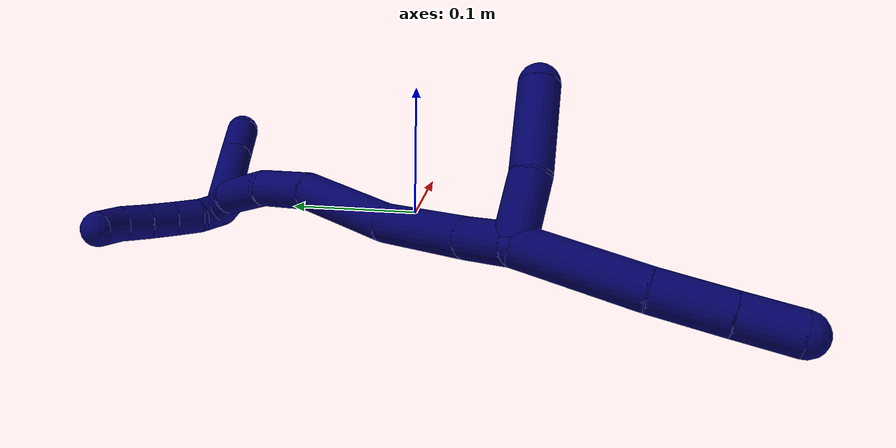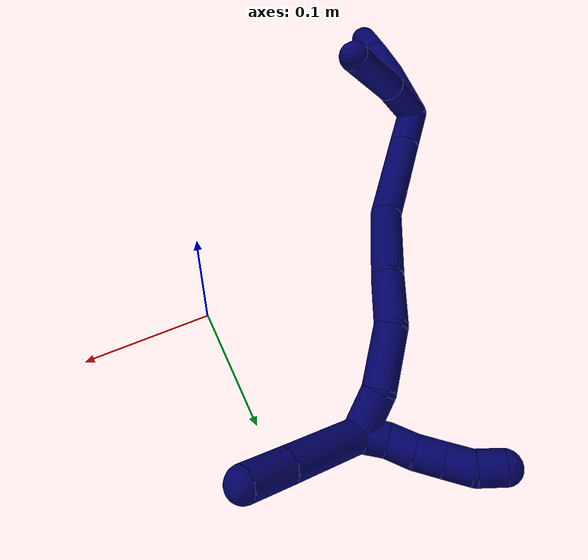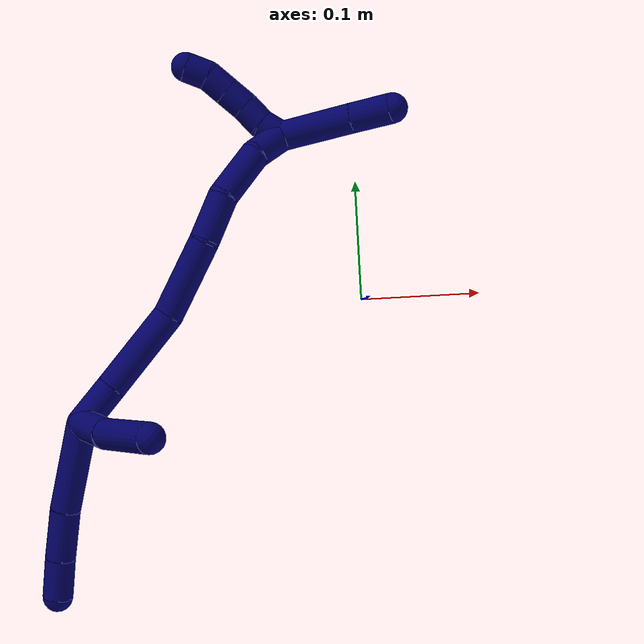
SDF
<sdf version="1.7">
 <world name="default">
  <model name="7">
   <static>0</static>
   <link name="7">
    <collision name="collision-cylinder-e_1_2_8">
     <pose>-0.027391 -0.014483 -0.020569 2.52811 -0.827906 -1.8923</pose>
     <geometry><cylinder><radius>0.0125</radius><length>0.074379</length></cylinder></geometry>
     <surface>
      <friction><ode><mu>1.16</mu><mu2>1.16</mu2><slip1>0</slip1><slip2>0</slip2></ode></friction>
      <contact><ode><kp>1e+06</kp><kd>1</kd><max_vel>0</max_vel><min_depth>0.001</min_depth></ode></contact>
     </surface>
    </collision>
    <visual name="visual-cylinder-e_1_2_8">
     <pose>-0.027391 -0.014483 -0.020569 2.52811 -0.827906 -1.8923</pose>
     <geometry><cylinder><radius>0.0125</radius><length>0.074379</length></cylinder></geometry>
     <material><ambient>0.003922 0 0.403922 1</ambient></material>
    </visual>
    <collision name="collision-cylinder-e_2_8_9">
     <pose>-0.06906 -0.037148 -0.054195 2.5818 -0.74731 -1.87635</pose>
     <geometry><cylinder><radius>0.0125</radius><length>0.042017</length></cylinder></geometry>
     <surface>
      <friction><ode><mu>1.16</mu><mu2>1.16</mu2><slip1>0</slip1><slip2>0</slip2></ode></friction>
      <contact><ode><kp>1e+06</kp><kd>1</kd><max_vel>0</max_vel><min_depth>0.001</min_depth></ode></contact>
     </surface>
    </collision>
    <visual name="visual-cylinder-e_2_8_9">
     <pose>-0.06906 -0.037148 -0.054195 2.5818 -0.74731 -1.87635</pose>
     <geometry><cylinder><radius>0.0125</radius><length>0.042017</length></cylinder></geometry>
     <material><ambient>0.003922 0 0.403922 1</ambient></material>
    </visual>
    <collision name="collision-cylinder-e_3_9_6">
     <pose>-0.094419 -0.051761 -0.078125 2.60754 -0.720108 -1.8848</pose>
     <geometry><cylinder><radius>0.0125</radius><length>0.033604</length></cylinder></geometry>
     <surface>
      <friction><ode><mu>1.16</mu><mu2>1.16</mu2><slip1>0</slip1><slip2>0</slip2></ode></friction>
      <contact><ode><kp>1e+06</kp><kd>1</kd><max_vel>0</max_vel><min_depth>0.001</min_depth></ode></contact>
     </surface>
    </collision>
    <visual name="visual-cylinder-e_3_9_6">
     <pose>-0.094419 -0.051761 -0.078125 2.60754 -0.720108 -1.8848</pose>
     <geometry><cylinder><radius>0.0125</radius><length>0.033604</length></cylinder></geometry>
     <material><ambient>0.003922 0 0.403922 1</ambient></material>
    </visual>
    <collision name="collision-cylinder-e_1_2_10">
     <pose>0.014911 -0.013026 -0.005643 1.97959 0.809943 1.15676</pose>
     <geometry><cylinder><radius>0.0125</radius><length>0.041175</length></cylinder></geometry>
     <surface>
      <friction><ode><mu>1.16</mu><mu2>1.16</mu2><slip1>0</slip1><slip2>0</slip2></ode></friction>
      <contact><ode><kp>1e+06</kp><kd>1</kd><max_vel>0</max_vel><min_depth>0.001</min_depth></ode></contact>
     </surface>
    </collision>
    <visual name="visual-cylinder-e_1_2_10">
     <pose>0.014911 -0.013026 -0.005643 1.97959 0.809943 1.15676</pose>
     <geometry><cylinder><radius>0.0125</radius><length>0.041175</length></cylinder></geometry>
     <material><ambient>0.003922 0 0.403922 1</ambient></material>
    </visual>
    <collision name="collision-cylinder-e_2_10_5">
     <pose>0.054275 -0.040682 -0.018569 2.03274 0.981675 1.42414</pose>
     <geometry><cylinder><radius>0.0125</radius><length>0.058825</length></cylinder></geometry>
     <surface>
      <friction><ode><mu>1.16</mu><mu2>1.16</mu2><slip1>0</slip1><slip2>0</slip2></ode></friction>
      <contact><ode><kp>1e+06</kp><kd>1</kd><max_vel>0</max_vel><min_depth>0.001</min_depth></ode></contact>
     </surface>
    </collision>
    <visual name="visual-cylinder-e_2_10_5">
     <pose>0.054275 -0.040682 -0.018569 2.03274 0.981675 1.42414</pose>
     <geometry><cylinder><radius>0.0125</radius><length>0.058825</length></cylinder></geometry>
     <material><ambient>0.003922 0 0.403922 1</ambient></material>
    </visual>
    <collision name="collision-cylinder-e_1_2_11">
     <pose>0.014007 0.012019 0.0012 -1.47128 0.859151 -0.786137</pose>
     <geometry><cylinder><radius>0.0125</radius><length>0.036992</length></cylinder></geometry>
     <surface>
      <friction><ode><mu>1.16</mu><mu2>1.16</mu2><slip1>0</slip1><slip2>0</slip2></ode></friction>
      <contact><ode><kp>1e+06</kp><kd>1</kd><max_vel>0</max_vel><min_depth>0.001</min_depth></ode></contact>
     </surface>
    </collision>
    <visual name="visual-cylinder-e_1_2_11">
     <pose>0.014007 0.012019 0.0012 -1.47128 0.859151 -0.786137</pose>
     <geometry><cylinder><radius>0.0125</radius><length>0.036992</length></cylinder></geometry>
     <material><ambient>0.003922 0 0.403922 1</ambient></material>
    </visual>
    <collision name="collision-cylinder-e_2_11_12">
     <pose>0.057113 0.047423 0.005397 -1.44333 0.889877 -0.794605</pose>
     <geometry><cylinder><radius>0.0125</radius><length>0.074902</length></cylinder></geometry>
     <surface>
      <friction><ode><mu>1.16</mu><mu2>1.16</mu2><slip1>0</slip1><slip2>0</slip2></ode></friction>
      <contact><ode><kp>1e+06</kp><kd>1</kd><max_vel>0</max_vel><min_depth>0.001</min_depth></ode></contact>
     </surface>
    </collision>
    <visual name="visual-cylinder-e_2_11_12">
     <pose>0.057113 0.047423 0.005397 -1.44333 0.889877 -0.794605</pose>
     <geometry><cylinder><radius>0.0125</radius><length>0.074902</length></cylinder></geometry>
     <material><ambient>0.003922 0 0.403922 1</ambient></material>
    </visual>
    <collision name="collision-cylinder-e_3_12_13">
     <pose>0.114561 0.085742 0.019645 -0.925149 0.987729 -0.524551</pose>
     <geometry><cylinder><radius>0.0125</radius><length>0.067919</length></cylinder></geometry>
     <surface>
      <friction><ode><mu>1.16</mu><mu2>1.16</mu2><slip1>0</slip1><slip2>0</slip2></ode></friction>
      <contact><ode><kp>1e+06</kp><kd>1</kd><max_vel>0</max_vel><min_depth>0.001</min_depth></ode></contact>
     </surface>
    </collision>
    <visual name="visual-cylinder-e_3_12_13">
     <pose>0.114561 0.085742 0.019645 -0.925149 0.987729 -0.524551</pose>
     <geometry><cylinder><radius>0.0125</radius><length>0.067919</length></cylinder></geometry>
     <material><ambient>0.003922 0 0.403922 1</ambient></material>
    </visual>
    <collision name="collision-cylinder-e_4_13_14">
     <pose>0.156777 0.113484 0.037659 -1.08495 0.763649 -0.47495</pose>
     <geometry><cylinder><radius>0.0125</radius><length>0.040106</length></cylinder></geometry>
     <surface>
      <friction><ode><mu>1.16</mu><mu2>1.16</mu2><slip1>0</slip1><slip2>0</slip2></ode></friction>
      <contact><ode><kp>1e+06</kp><kd>1</kd><max_vel>0</max_vel><min_depth>0.001</min_depth></ode></contact>
     </surface>
    </collision>
    <visual name="visual-cylinder-e_4_13_14">
     <pose>0.156777 0.113484 0.037659 -1.08495 0.763649 -0.47495</pose>
     <geometry><cylinder><radius>0.0125</radius><length>0.040106</length></cylinder></geometry>
     <material><ambient>0.003922 0 0.403922 1</ambient></material>
    </visual>
    <collision name="collision-cylinder-e_5_14_15">
     <pose>0.185198 0.14471 0.045731 -1.49988 0.667492 -0.624773</pose>
     <geometry><cylinder><radius>0.0125</radius><length>0.047019</length></cylinder></geometry>
     <surface>
      <friction><ode><mu>1.16</mu><mu2>1.16</mu2><slip1>0</slip1><slip2>0</slip2></ode></friction>
      <contact><ode><kp>1e+06</kp><kd>1</kd><max_vel>0</max_vel><min_depth>0.001</min_depth></ode></contact>
     </surface>
    </collision>
    <visual name="visual-cylinder-e_5_14_15">
     <pose>0.185198 0.14471 0.045731 -1.49988 0.667492 -0.624773</pose>
     <geometry><cylinder><radius>0.0125</radius><length>0.047019</length></cylinder></geometry>
     <material><ambient>0.003922 0 0.403922 1</ambient></material>
    </visual>
    <collision name="collision-cylinder-e_6_15_1">
     <pose>0.207978 0.176918 0.043112 -1.84823 0.520939 -0.678729</pose>
     <geometry><cylinder><radius>0.0125</radius><length>0.033062</length></cylinder></geometry>
     <surface>
      <friction><ode><mu>1.16</mu><mu2>1.16</mu2><slip1>0</slip1><slip2>0</slip2></ode></friction>
      <contact><ode><kp>1e+06</kp><kd>1</kd><max_vel>0</max_vel><min_depth>0.001</min_depth></ode></contact>
     </surface>
    </collision>
    <visual name="visual-cylinder-e_6_15_1">
     <pose>0.207978 0.176918 0.043112 -1.84823 0.520939 -0.678729</pose>
     <geometry><cylinder><radius>0.0125</radius><length>0.033062</length></cylinder></geometry>
     <material><ambient>0.003922 0 0.403922 1</ambient></material>
    </visual>
    <collision name="collision-cylinder-e_1_1_16">
     <pose>0.212691 0.192179 0.048431 -0.157832 -0.35911 0.028706</pose>
     <geometry><cylinder><radius>0.0125</radius><length>0.02</length></cylinder></geometry>
     <surface>
      <friction><ode><mu>1.16</mu><mu2>1.16</mu2><slip1>0</slip1><slip2>0</slip2></ode></friction>
      <contact><ode><kp>1e+06</kp><kd>1</kd><max_vel>0</max_vel><min_depth>0.001</min_depth></ode></contact>
     </surface>
    </collision>
    <visual name="visual-cylinder-e_1_1_16">
     <pose>0.212691 0.192179 0.048431 -0.157832 -0.35911 0.028706</pose>
     <geometry><cylinder><radius>0.0125</radius><length>0.02</length></cylinder></geometry>
     <material><ambient>0.003922 0 0.403922 1</ambient></material>
    </visual>
    <collision name="collision-cylinder-e_2_16_17">
     <pose>0.208252 0.195843 0.067389 -0.221962 -0.092604 0.010327</pose>
     <geometry><cylinder><radius>0.0125</radius><length>0.02</length></cylinder></geometry>
     <surface>
      <friction><ode><mu>1.16</mu><mu2>1.16</mu2><slip1>0</slip1><slip2>0</slip2></ode></friction>
      <contact><ode><kp>1e+06</kp><kd>1</kd><max_vel>0</max_vel><min_depth>0.001</min_depth></ode></contact>
     </surface>
    </collision>
    <visual name="visual-cylinder-e_2_16_17">
     <pose>0.208252 0.195843 0.067389 -0.221962 -0.092604 0.010327</pose>
     <geometry><cylinder><radius>0.0125</radius><length>0.02</length></cylinder></geometry>
     <material><ambient>0.003922 0 0.403922 1</ambient></material>
    </visual>
    <collision name="collision-cylinder-e_3_17_18">
     <pose>0.205599 0.199168 0.086887 -0.115315 -0.173644 0.010048</pose>
     <geometry><cylinder><radius>0.0125</radius><length>0.02</length></cylinder></geometry>
     <surface>
      <friction><ode><mu>1.16</mu><mu2>1.16</mu2><slip1>0</slip1><slip2>0</slip2></ode></friction>
      <contact><ode><kp>1e+06</kp><kd>1</kd><max_vel>0</max_vel><min_depth>0.001</min_depth></ode></contact>
     </surface>
    </collision>
    <visual name="visual-cylinder-e_3_17_18">
     <pose>0.205599 0.199168 0.086887 -0.115315 -0.173644 0.010048</pose>
     <geometry><cylinder><radius>0.0125</radius><length>0.02</length></cylinder></geometry>
     <material><ambient>0.003922 0 0.403922 1</ambient></material>
    </visual>
    <collision name="collision-cylinder-e_4_18_19">
     <pose>0.202293 0.201225 0.106502 -0.093658 -0.1585 0.007443</pose>
     <geometry><cylinder><radius>0.0125</radius><length>0.02</length></cylinder></geometry>
     <surface>
      <friction><ode><mu>1.16</mu><mu2>1.16</mu2><slip1>0</slip1><slip2>0</slip2></ode></friction>
      <contact><ode><kp>1e+06</kp><kd>1</kd><max_vel>0</max_vel><min_depth>0.001</min_depth></ode></contact>
     </surface>
    </collision>
    <visual name="visual-cylinder-e_4_18_19">
     <pose>0.202293 0.201225 0.106502 -0.093658 -0.1585 0.007443</pose>
     <geometry><cylinder><radius>0.0125</radius><length>0.02</length></cylinder></geometry>
     <material><ambient>0.003922 0 0.403922 1</ambient></material>
    </visual>
    <collision name="collision-cylinder-e_5_19_4">
     <pose>0.196325 0.201581 0.125301 0.063224 -0.454452 -0.014623</pose>
     <geometry><cylinder><radius>0.0125</radius><length>0.02</length></cylinder></geometry>
     <surface>
      <friction><ode><mu>1.16</mu><mu2>1.16</mu2><slip1>0</slip1><slip2>0</slip2></ode></friction>
      <contact><ode><kp>1e+06</kp><kd>1</kd><max_vel>0</max_vel><min_depth>0.001</min_depth></ode></contact>
     </surface>
    </collision>
    <visual name="visual-cylinder-e_5_19_4">
     <pose>0.196325 0.201581 0.125301 0.063224 -0.454452 -0.014623</pose>
     <geometry><cylinder><radius>0.0125</radius><length>0.02</length></cylinder></geometry>
     <material><ambient>0.003922 0 0.403922 1</ambient></material>
    </visual>
    <collision name="collision-cylinder-e_1_1_20">
     <pose>0.246487 0.187712 0.026428 2.91093 1.1624 2.79247</pose>
     <geometry><cylinder><radius>0.0125</radius><length>0.06599</length></cylinder></geometry>
     <surface>
      <friction><ode><mu>1.16</mu><mu2>1.16</mu2><slip1>0</slip1><slip2>0</slip2></ode></friction>
      <contact><ode><kp>1e+06</kp><kd>1</kd><max_vel>0</max_vel><min_depth>0.001</min_depth></ode></contact>
     </surface>
    </collision>
    <visual name="visual-cylinder-e_1_1_20">
     <pose>0.246487 0.187712 0.026428 2.91093 1.1624 2.79247</pose>
     <geometry><cylinder><radius>0.0125</radius><length>0.06599</length></cylinder></geometry>
     <material><ambient>0.003922 0 0.403922 1</ambient></material>
    </visual>
    <collision name="collision-cylinder-e_2_20_3">
     <pose>0.292306 0.183156 0.006941 2.91377 1.15237 2.79299</pose>
     <geometry><cylinder><radius>0.0125</radius><length>0.03401</length></cylinder></geometry>
     <surface>
      <friction><ode><mu>1.16</mu><mu2>1.16</mu2><slip1>0</slip1><slip2>0</slip2></ode></friction>
      <contact><ode><kp>1e+06</kp><kd>1</kd><max_vel>0</max_vel><min_depth>0.001</min_depth></ode></contact>
     </surface>
    </collision>
    <visual name="visual-cylinder-e_2_20_3">
     <pose>0.292306 0.183156 0.006941 2.91377 1.15237 2.79299</pose>
     <geometry><cylinder><radius>0.0125</radius><length>0.03401</length></cylinder></geometry>
     <material><ambient>0.003922 0 0.403922 1</ambient></material>
    </visual>
    <collision name="collision-sphere-3">
     <pose>0.307844 0.181595 0.00021 0 -0 0</pose>
     <geometry><sphere><radius>0.0125</radius></sphere></geometry>
     <surface>
      <friction><ode><mu>1.16</mu><mu2>1.16</mu2><slip1>0</slip1><slip2>0</slip2></ode></friction>
      <contact><ode><kp>1e+06</kp><kd>1</kd><max_vel>0</max_vel><min_depth>0.001</min_depth></ode></contact>
     </surface>
    </collision>
    <visual name="visual-sphere-3">
     <pose>0.307844 0.181595 0.00021 0 -0 0</pose>
     <geometry><sphere><radius>0.0125</radius></sphere></geometry>
     <material><ambient>0.003922 0 0.403922 1</ambient></material>
    </visual>
    <collision name="collision-sphere-20">
     <pose>0.276769 0.184716 0.013672 0 -0 0</pose>
     <geometry><sphere><radius>0.0125</radius></sphere></geometry>
     <surface>
      <friction><ode><mu>1.16</mu><mu2>1.16</mu2><slip1>0</slip1><slip2>0</slip2></ode></friction>
      <contact><ode><kp>1e+06</kp><kd>1</kd><max_vel>0</max_vel><min_depth>0.001</min_depth></ode></contact>
     </surface>
    </collision>
    <visual name="visual-sphere-20">
     <pose>0.276769 0.184716 0.013672 0 -0 0</pose>
     <geometry><sphere><radius>0.0125</radius></sphere></geometry>
     <material><ambient>0.003922 0 0.403922 1</ambient></material>
    </visual>
    <collision name="collision-sphere-4">
     <pose>0.191936 0.201013 0.134268 0 -0 0</pose>
     <geometry><sphere><radius>0.0125</radius></sphere></geometry>
     <surface>
      <friction><ode><mu>1.16</mu><mu2>1.16</mu2><slip1>0</slip1><slip2>0</slip2></ode></friction>
      <contact><ode><kp>1e+06</kp><kd>1</kd><max_vel>0</max_vel><min_depth>0.001</min_depth></ode></contact>
     </surface>
    </collision>
    <visual name="visual-sphere-4">
     <pose>0.191936 0.201013 0.134268 0 -0 0</pose>
     <geometry><sphere><radius>0.0125</radius></sphere></geometry>
     <material><ambient>0.003922 0 0.403922 1</ambient></material>
    </visual>
    <collision name="collision-sphere-5">
     <pose>0.07873 -0.055312 -0.025853 0 -0 0</pose>
     <geometry><sphere><radius>0.0125</radius></sphere></geometry>
     <surface>
      <friction><ode><mu>1.16</mu><mu2>1.16</mu2><slip1>0</slip1><slip2>0</slip2></ode></friction>
      <contact><ode><kp>1e+06</kp><kd>1</kd><max_vel>0</max_vel><min_depth>0.001</min_depth></ode></contact>
     </surface>
    </collision>
    <visual name="visual-sphere-5">
     <pose>0.07873 -0.055312 -0.025853 0 -0 0</pose>
     <geometry><sphere><radius>0.0125</radius></sphere></geometry>
     <material><ambient>0.003922 0 0.403922 1</ambient></material>
    </visual>
    <collision name="collision-sphere-10">
     <pose>0.029821 -0.026053 -0.011286 0 -0 0</pose>
     <geometry><sphere><radius>0.0125</radius></sphere></geometry>
     <surface>
      <friction><ode><mu>1.16</mu><mu2>1.16</mu2><slip1>0</slip1><slip2>0</slip2></ode></friction>
      <contact><ode><kp>1e+06</kp><kd>1</kd><max_vel>0</max_vel><min_depth>0.001</min_depth></ode></contact>
     </surface>
    </collision>
    <visual name="visual-sphere-10">
     <pose>0.029821 -0.026053 -0.011286 0 -0 0</pose>
     <geometry><sphere><radius>0.0125</radius></sphere></geometry>
     <material><ambient>0.003922 0 0.403922 1</ambient></material>
    </visual>
    <collision name="collision-sphere-6">
     <pose>-0.1055 -0.05819 -0.088997 0 -0 0</pose>
     <geometry><sphere><radius>0.0125</radius></sphere></geometry>
     <surface>
      <friction><ode><mu>1.16</mu><mu2>1.16</mu2><slip1>0</slip1><slip2>0</slip2></ode></friction>
      <contact><ode><kp>1e+06</kp><kd>1</kd><max_vel>0</max_vel><min_depth>0.001</min_depth></ode></contact>
     </surface>
    </collision>
    <visual name="visual-sphere-6">
     <pose>-0.1055 -0.05819 -0.088997 0 -0 0</pose>
     <geometry><sphere><radius>0.0125</radius></sphere></geometry>
     <material><ambient>0.003922 0 0.403922 1</ambient></material>
    </visual>
    <collision name="collision-sphere-9">
     <pose>-0.083339 -0.045331 -0.067253 0 -0 0</pose>
     <geometry><sphere><radius>0.0125</radius></sphere></geometry>
     <surface>
      <friction><ode><mu>1.16</mu><mu2>1.16</mu2><slip1>0</slip1><slip2>0</slip2></ode></friction>
      <contact><ode><kp>1e+06</kp><kd>1</kd><max_vel>0</max_vel><min_depth>0.001</min_depth></ode></contact>
     </surface>
    </collision>
    <visual name="visual-sphere-9">
     <pose>-0.083339 -0.045331 -0.067253 0 -0 0</pose>
     <geometry><sphere><radius>0.0125</radius></sphere></geometry>
     <material><ambient>0.003922 0 0.403922 1</ambient></material>
    </visual>
    <collision name="collision-sphere-2">
     <geometry><sphere><radius>0.0125</radius></sphere></geometry>
     <surface>
      <friction><ode><mu>1.16</mu><mu2>1.16</mu2><slip1>0</slip1><slip2>0</slip2></ode></friction>
      <contact><ode><kp>1e+06</kp><kd>1</kd><max_vel>0</max_vel><min_depth>0.001</min_depth></ode></contact>
     </surface>
    </collision>
    <visual name="visual-sphere-2">
     <geometry><sphere><radius>0.0125</radius></sphere></geometry>
     <material><ambient>0.003922 0 0.403922 1</ambient></material>
    </visual>
    <collision name="collision-sphere-19">
     <pose>0.200715 0.202148 0.116333 0 -0 0</pose>
     <geometry><sphere><radius>0.0125</radius></sphere></geometry>
     <surface>
      <friction><ode><mu>1.16</mu><mu2>1.16</mu2><slip1>0</slip1><slip2>0</slip2></ode></friction>
      <contact><ode><kp>1e+06</kp><kd>1</kd><max_vel>0</max_vel><min_depth>0.001</min_depth></ode></contact>
     </surface>
    </collision>
    <visual name="visual-sphere-19">
     <pose>0.200715 0.202148 0.116333 0 -0 0</pose>
     <geometry><sphere><radius>0.0125</radius></sphere></geometry>
     <material><ambient>0.003922 0 0.403922 1</ambient></material>
    </visual>
    <collision name="collision-sphere-8">
     <pose>-0.054781 -0.028965 -0.041137 0 -0 0</pose>
     <geometry><sphere><radius>0.0125</radius></sphere></geometry>
     <surface>
      <friction><ode><mu>1.16</mu><mu2>1.16</mu2><slip1>0</slip1><slip2>0</slip2></ode></friction>
      <contact><ode><kp>1e+06</kp><kd>1</kd><max_vel>0</max_vel><min_depth>0.001</min_depth></ode></contact>
     </surface>
    </collision>
    <visual name="visual-sphere-8">
     <pose>-0.054781 -0.028965 -0.041137 0 -0 0</pose>
     <geometry><sphere><radius>0.0125</radius></sphere></geometry>
     <material><ambient>0.003922 0 0.403922 1</ambient></material>
    </visual>
    <collision name="collision-sphere-11">
     <pose>0.028013 0.024039 0.0024 0 -0 0</pose>
     <geometry><sphere><radius>0.0125</radius></sphere></geometry>
     <surface>
      <friction><ode><mu>1.16</mu><mu2>1.16</mu2><slip1>0</slip1><slip2>0</slip2></ode></friction>
      <contact><ode><kp>1e+06</kp><kd>1</kd><max_vel>0</max_vel><min_depth>0.001</min_depth></ode></contact>
     </surface>
    </collision>
    <visual name="visual-sphere-11">
     <pose>0.028013 0.024039 0.0024 0 -0 0</pose>
     <geometry><sphere><radius>0.0125</radius></sphere></geometry>
     <material><ambient>0.003922 0 0.403922 1</ambient></material>
    </visual>
    <collision name="collision-sphere-12">
     <pose>0.086212 0.070808 0.008394 0 -0 0</pose>
     <geometry><sphere><radius>0.0125</radius></sphere></geometry>
     <surface>
      <friction><ode><mu>1.16</mu><mu2>1.16</mu2><slip1>0</slip1><slip2>0</slip2></ode></friction>
      <contact><ode><kp>1e+06</kp><kd>1</kd><max_vel>0</max_vel><min_depth>0.001</min_depth></ode></contact>
     </surface>
    </collision>
    <visual name="visual-sphere-12">
     <pose>0.086212 0.070808 0.008394 0 -0 0</pose>
     <geometry><sphere><radius>0.0125</radius></sphere></geometry>
     <material><ambient>0.003922 0 0.403922 1</ambient></material>
    </visual>
    <collision name="collision-sphere-13">
     <pose>0.142909 0.100676 0.030895 0 -0 0</pose>
     <geometry><sphere><radius>0.0125</radius></sphere></geometry>
     <surface>
      <friction><ode><mu>1.16</mu><mu2>1.16</mu2><slip1>0</slip1><slip2>0</slip2></ode></friction>
      <contact><ode><kp>1e+06</kp><kd>1</kd><max_vel>0</max_vel><min_depth>0.001</min_depth></ode></contact>
     </surface>
    </collision>
    <visual name="visual-sphere-13">
     <pose>0.142909 0.100676 0.030895 0 -0 0</pose>
     <geometry><sphere><radius>0.0125</radius></sphere></geometry>
     <material><ambient>0.003922 0 0.403922 1</ambient></material>
    </visual>
    <collision name="collision-sphere-14">
     <pose>0.170645 0.126293 0.044423 0 -0 0</pose>
     <geometry><sphere><radius>0.0125</radius></sphere></geometry>
     <surface>
      <friction><ode><mu>1.16</mu><mu2>1.16</mu2><slip1>0</slip1><slip2>0</slip2></ode></friction>
      <contact><ode><kp>1e+06</kp><kd>1</kd><max_vel>0</max_vel><min_depth>0.001</min_depth></ode></contact>
     </surface>
    </collision>
    <visual name="visual-sphere-14">
     <pose>0.170645 0.126293 0.044423 0 -0 0</pose>
     <geometry><sphere><radius>0.0125</radius></sphere></geometry>
     <material><ambient>0.003922 0 0.403922 1</ambient></material>
    </visual>
    <collision name="collision-sphere-15">
     <pose>0.199751 0.163128 0.047039 0 -0 0</pose>
     <geometry><sphere><radius>0.0125</radius></sphere></geometry>
     <surface>
      <friction><ode><mu>1.16</mu><mu2>1.16</mu2><slip1>0</slip1><slip2>0</slip2></ode></friction>
      <contact><ode><kp>1e+06</kp><kd>1</kd><max_vel>0</max_vel><min_depth>0.001</min_depth></ode></contact>
     </surface>
    </collision>
    <visual name="visual-sphere-15">
     <pose>0.199751 0.163128 0.047039 0 -0 0</pose>
     <geometry><sphere><radius>0.0125</radius></sphere></geometry>
     <material><ambient>0.003922 0 0.403922 1</ambient></material>
    </visual>
    <collision name="collision-sphere-1">
     <pose>0.216205 0.190708 0.039185 0 -0 0</pose>
     <geometry><sphere><radius>0.0125</radius></sphere></geometry>
     <surface>
      <friction><ode><mu>1.16</mu><mu2>1.16</mu2><slip1>0</slip1><slip2>0</slip2></ode></friction>
      <contact><ode><kp>1e+06</kp><kd>1</kd><max_vel>0</max_vel><min_depth>0.001</min_depth></ode></contact>
     </surface>
    </collision>
    <visual name="visual-sphere-1">
     <pose>0.216205 0.190708 0.039185 0 -0 0</pose>
     <geometry><sphere><radius>0.0125</radius></sphere></geometry>
     <material><ambient>0.003922 0 0.403922 1</ambient></material>
    </visual>
    <collision name="collision-sphere-18">
     <pose>0.203872 0.200301 0.096671 0 -0 0</pose>
     <geometry><sphere><radius>0.0125</radius></sphere></geometry>
     <surface>
      <friction><ode><mu>1.16</mu><mu2>1.16</mu2><slip1>0</slip1><slip2>0</slip2></ode></friction>
      <contact><ode><kp>1e+06</kp><kd>1</kd><max_vel>0</max_vel><min_depth>0.001</min_depth></ode></contact>
     </surface>
    </collision>
    <visual name="visual-sphere-18">
     <pose>0.203872 0.200301 0.096671 0 -0 0</pose>
     <geometry><sphere><radius>0.0125</radius></sphere></geometry>
     <material><ambient>0.003922 0 0.403922 1</ambient></material>
    </visual>
    <collision name="collision-sphere-16">
     <pose>0.209177 0.193651 0.057677 0 -0 0</pose>
     <geometry><sphere><radius>0.0125</radius></sphere></geometry>
     <surface>
      <friction><ode><mu>1.16</mu><mu2>1.16</mu2><slip1>0</slip1><slip2>0</slip2></ode></friction>
      <contact><ode><kp>1e+06</kp><kd>1</kd><max_vel>0</max_vel><min_depth>0.001</min_depth></ode></contact>
     </surface>
    </collision>
    <visual name="visual-sphere-16">
     <pose>0.209177 0.193651 0.057677 0 -0 0</pose>
     <geometry><sphere><radius>0.0125</radius></sphere></geometry>
     <material><ambient>0.003922 0 0.403922 1</ambient></material>
    </visual>
    <collision name="collision-sphere-17">
     <pose>0.207327 0.198035 0.077102 0 -0 0</pose>
     <geometry><sphere><radius>0.0125</radius></sphere></geometry>
     <surface>
      <friction><ode><mu>1.16</mu><mu2>1.16</mu2><slip1>0</slip1><slip2>0</slip2></ode></friction>
      <contact><ode><kp>1e+06</kp><kd>1</kd><max_vel>0</max_vel><min_depth>0.001</min_depth></ode></contact>
     </surface>
    </collision>
    <visual name="visual-sphere-17">
     <pose>0.207327 0.198035 0.077102 0 -0 0</pose>
     <geometry><sphere><radius>0.0125</radius></sphere></geometry>
     <material><ambient>0.003922 0 0.403922 1</ambient></material>
    </visual>
    <inertial>
     <pose>0.102471 0.077512 0.013043 0 -0 0</pose>
     <mass>0.75</mass>
     <inertia><ixx>5e-06</ixx><ixy>0</ixy><ixz>0</ixz><iyy>0.000104</iyy><iyz>0</iyz><izz>-0.000106</izz></inertia>
    </inertial>
   </link>
   <pose>-0.23457 -0.08925 0.054856 -1.26311 -0.513241 0.585183</pose>
  </model>
 </world>
</sdf>
